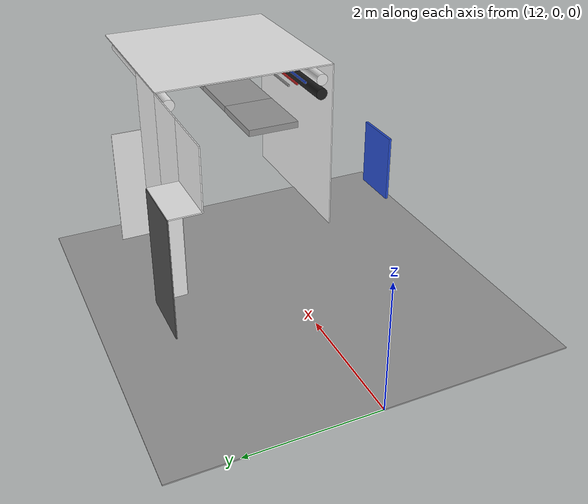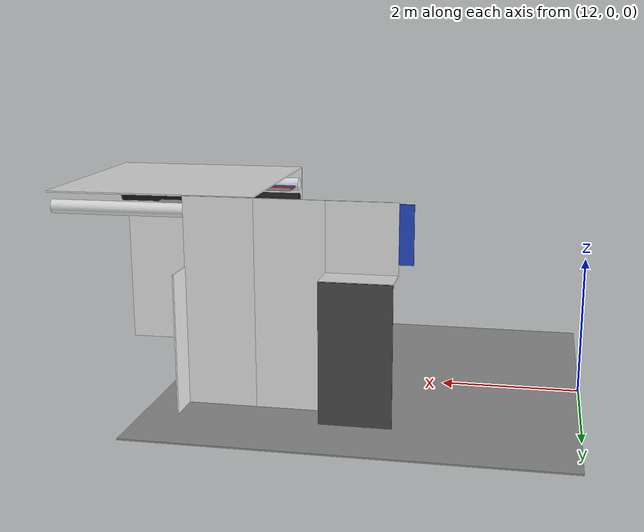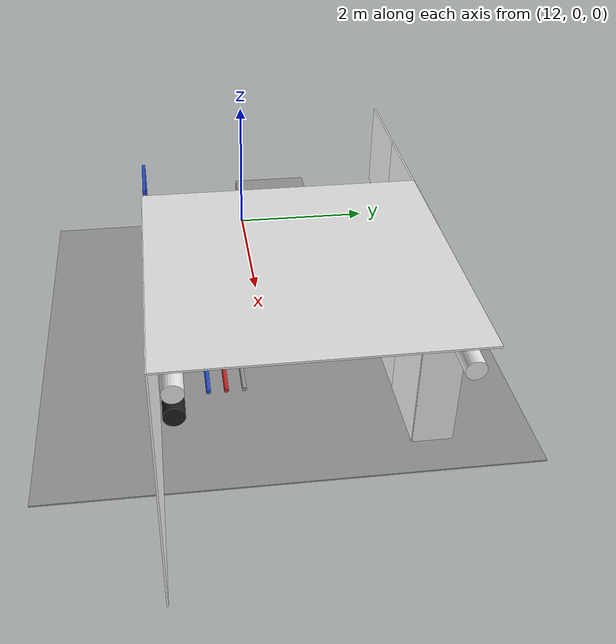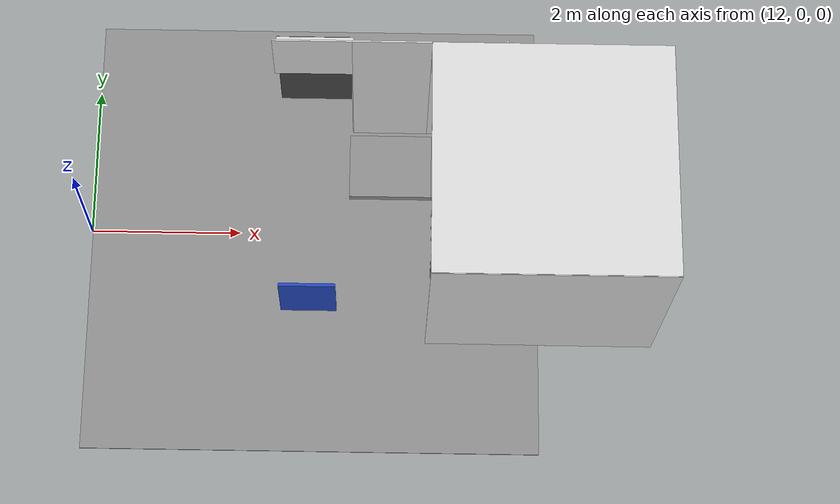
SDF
<sdf version="1.6">
 <world name="default">
  <model name="ceiling_1_5_0_2_1">
   <pose>16.0 0.0 2.55 0.0 0.0 -1.57</pose>
   <link name="link_1">
    <visual name="visual">
     <geometry><box><size>0.8 1 0.1</size></box></geometry>
     <material>
      <script><uri>file://media/materials/scripts/gazebo.material</uri><name>Gazebo/Grey</name></script>
     </material>
    </visual>
    <collision name="collision"><geometry><box><size>0.8 1 0.1</size></box></geometry></collision>
   </link>
   <static>1</static>
  </model>
  <model name="panel_5_0_0_1">
   <static>1</static>
   <pose>15.0 -1.5 1.95 0.0 0.0 -1.57</pose>
   <link name="link">
    <collision name="collision"><geometry><box><size>0.04 0.7 1</size></box></geometry></collision>
    <visual name="visual">
     <material>
      <script><name>Gazebo/Blue</name><uri>file://media/materials/scripts/gazebo.material</uri></script>
     </material>
     <geometry><box><size>0.04 0.7 1</size></box></geometry>
    </visual>
   </link>
  </model>
  <model name="wall_left_front_left_5_0_0_1">
   <static>1</static>
   <pose>16.0 1.5 1.5 0.0 0.0 0.0</pose>
   <link name="link">
    <collision name="collision"><geometry><box><size>1.0 0.02 3.0</size></box></geometry></collision>
    <visual name="visual">
     <material>
      <script><name>Gazebo/White</name><uri>file://media/materials/scripts/gazebo.material</uri></script>
     </material>
     <geometry><box><size>1.0 0.02 3.0</size></box></geometry>
    </visual>
   </link>
  </model>
  <model name="wall_left_front_up_5_0_0_1">
   <static>1</static>
   <pose>15.0 1.5 2.5 0.0 0.0 0.0</pose>
   <link name="link">
    <collision name="collision"><geometry><box><size>1.0 0.02 1.0</size></box></geometry></collision>
    <visual name="visual">
     <material>
      <script><name>Gazebo/White</name><uri>file://media/materials/scripts/gazebo.material</uri></script>
     </material>
     <geometry><box><size>1.0 0.02 1.0</size></box></geometry>
    </visual>
   </link>
  </model>
  <model name="wall_left_inside_back_5_0_0_1">
   <static>1</static>
   <pose>15.0 2.0 1.0 0.0 0.0 0.0</pose>
   <link name="link">
    <collision name="collision"><geometry><box><size>1 0.02 2</size></box></geometry></collision>
    <visual name="visual">
     <material>
      <script><name>Gazebo/DarkGrey</name><uri>file://media/materials/scripts/gazebo.material</uri></script>
     </material>
     <geometry><box><size>1 0.02 2</size></box></geometry>
    </visual>
   </link>
  </model>
  <model name="wall_left_inside_left_5_0_0_1">
   <static>1</static>
   <pose>15.5 1.75 1.0 0.0 0.0 -1.57</pose>
   <link name="link">
    <collision name="collision"><geometry><box><size>0.5 0.02 2</size></box></geometry></collision>
    <visual name="visual">
     <material>
      <script><name>Gazebo/White</name><uri>file://media/materials/scripts/gazebo.material</uri></script>
     </material>
     <geometry><box><size>0.5 0.02 2</size></box></geometry>
    </visual>
   </link>
  </model>
  <model name="wall_left_inside_top_5_0_0_1">
   <static>1</static>
   <pose>15.0 1.75 2.0 1.57 0.0 0.0</pose>
   <link name="link">
    <collision name="collision"><geometry><box><size>1 0.02 0.5</size></box></geometry></collision>
    <visual name="visual">
     <material>
      <script><name>Gazebo/White</name><uri>file://media/materials/scripts/gazebo.material</uri></script>
     </material>
     <geometry><box><size>1 0.02 0.5</size></box></geometry>
    </visual>
   </link>
  </model>
  <model name="wall_bottom_5_0_0_1">
   <static>1</static>
   <pose>15.0 0.0 0.0 0.0 0.0 -1.57</pose>
   <link name="link">
    <collision name="collision"><geometry><box><size>6.0 6.0 0.02</size></box></geometry></collision>
    <visual name="visual">
     <material>
      <script><name>Gazebo/Grey</name><uri>file://media/materials/scripts/gazebo.material</uri></script>
     </material>
     <geometry><box><size>6.0 6.0 0.02</size></box></geometry>
    </visual>
   </link>
  </model>
  <model name="wall_right_6_0_0_1">
   <static>1</static>
   <pose>18.0 -1.5 1.5 0.0 0.0 0.0</pose>
   <link name="link">
    <collision name="collision"><geometry><box><size>3.0 0.02 3.0</size></box></geometry></collision>
    <visual name="visual">
     <material>
      <script><name>Gazebo/White</name><uri>file://media/materials/scripts/gazebo.material</uri></script>
     </material>
     <geometry><box><size>3.0 0.02 3.0</size></box></geometry>
    </visual>
   </link>
  </model>
  <model name="wall_top_6_0_0_1">
   <static>1</static>
   <pose>18.0 0.0 3.0 1.57 0.0 -1.57</pose>
   <link name="link">
    <collision name="collision"><geometry><box><size>3.0 0.02 3.0</size></box></geometry></collision>
    <visual name="visual">
     <material>
      <script><name>Gazebo/White</name><uri>file://media/materials/scripts/gazebo.material</uri></script>
     </material>
     <geometry><box><size>3.0 0.02 3.0</size></box></geometry>
    </visual>
   </link>
  </model>
  <model name="ceiling_1_6_0_0_1">
   <pose>18.0 0.0 2.55 0.0 0.0 -1.57</pose>
   <link name="link_1">
    <visual name="visual">
     <geometry><box><size>0.8 1 0.1</size></box></geometry>
     <material>
      <script><uri>file://media/materials/scripts/gazebo.material</uri><name>Gazebo/Grey</name></script>
     </material>
    </visual>
    <collision name="collision"><geometry><box><size>0.8 1 0.1</size></box></geometry></collision>
   </link>
   <static>1</static>
  </model>
  <model name="ceiling_1_6_0_1_1">
   <pose>17.0 0.0 2.55 0.0 0.0 -1.57</pose>
   <link name="link_1">
    <visual name="visual">
     <geometry><box><size>0.8 1 0.1</size></box></geometry>
     <material>
      <script><uri>file://media/materials/scripts/gazebo.material</uri><name>Gazebo/Grey</name></script>
     </material>
    </visual>
    <collision name="collision"><geometry><box><size>0.8 1 0.1</size></box></geometry></collision>
   </link>
   <static>1</static>
  </model>
  <model name="white_pipe_left_6_0_0_1">
   <static>1</static>
   <pose>18.0 0.0 2.76 0.0 0.0 -1.57</pose>
   <link name="link_0">
    <visual name="visual">
     <pose>-1.3 0 0 1.57 0 0</pose>
     <geometry><cylinder><radius>0.1</radius><length>3.0</length></cylinder></geometry>
     <material>
      <script><uri>file://media/materials/scripts/gazebo.material</uri><name>Gazebo/White</name></script>
     </material>
    </visual>
    <collision name="collision">
     <pose>-1.3 0 0 1.57 0 0</pose>
     <geometry><cylinder><radius>0.1</radius><length>3.0</length></cylinder></geometry>
    </collision>
   </link>
  </model>
  <model name="white_pipe_right_6_0_0_1">
   <static>1</static>
   <pose>18.0 0.0 2.76 0.0 0.0 -1.57</pose>
   <link name="link_0">
    <visual name="visual">
     <pose>1.3 0 0 1.57 0 0</pose>
     <geometry><cylinder><radius>0.1</radius><length>3.0</length></cylinder></geometry>
     <material>
      <script><uri>file://media/materials/scripts/gazebo.material</uri><name>Gazebo/White</name></script>
     </material>
    </visual>
    <collision name="collision">
     <pose>1.3 0 0 1.57 0 0</pose>
     <geometry><cylinder><radius>0.1</radius><length>3.0</length></cylinder></geometry>
    </collision>
   </link>
  </model>
  <model name="black_pipe_right_6_0_0_1">
   <static>1</static>
   <pose>18.0 0.0 2.76 0.0 0.0 -1.57</pose>
   <link name="link_0">
    <visual name="visual">
     <pose>1.3 0 -0.25 1.57 0 0</pose>
     <geometry><cylinder><radius>0.1</radius><length>3.0</length></cylinder></geometry>
     <material>
      <script><uri>file://media/materials/scripts/gazebo.material</uri><name>Gazebo/Black</name></script>
     </material>
    </visual>
    <collision name="collision">
     <pose>1.3 0 -0.25 1.57 0 0</pose>
     <geometry><cylinder><radius>0.1</radius><length>3.0</length></cylinder></geometry>
    </collision>
   </link>
  </model>
  <model name="grey_pipe_right_6_0_0_1">
   <static>1</static>
   <pose>18.0 0.0 2.76 0.0 0.0 -1.57</pose>
   <link name="link_0">
    <visual name="visual">
     <pose>0.7 0 0 1.57 0 0</pose>
     <geometry><cylinder><radius>0.02</radius><length>3.0</length></cylinder></geometry>
     <material>
      <script><uri>file://media/materials/scripts/gazebo.material</uri><name>Gazebo/Grey</name></script>
     </material>
    </visual>
    <collision name="collision">
     <pose>0.7 0 0 1.57 0 0</pose>
     <geometry><cylinder><radius>0.02</radius><length>3.0</length></cylinder></geometry>
    </collision>
   </link>
  </model>
  <model name="red_pipe_right_6_0_0_1">
   <static>1</static>
   <pose>18.0 0.0 2.76 0.0 0.0 -1.57</pose>
   <link name="link_0">
    <visual name="visual">
     <pose>0.85 0 0 1.57 0 0</pose>
     <geometry><cylinder><radius>0.02</radius><length>3.0</length></cylinder></geometry>
     <material>
      <script><uri>file://media/materials/scripts/gazebo.material</uri><name>Gazebo/Red</name></script>
     </material>
    </visual>
    <collision name="collision">
     <pose>0.85 0 0 1.57 0 0</pose>
     <geometry><cylinder><radius>0.02</radius><length>3.0</length></cylinder></geometry>
    </collision>
   </link>
  </model>
  <model name="blue_pipe_right_6_0_0_1">
   <static>1</static>
   <pose>18.0 0.0 2.76 0.0 0.0 -1.57</pose>
   <link name="link_0">
    <visual name="visual">
     <pose>1 0 0 1.57 0 0</pose>
     <geometry><cylinder><radius>0.02</radius><length>3.0</length></cylinder></geometry>
     <material>
      <script><uri>file://media/materials/scripts/gazebo.material</uri><name>Gazebo/Blue</name></script>
     </material>
    </visual>
    <collision name="collision">
     <pose>1 0 0 1.57 0 0</pose>
     <geometry><cylinder><radius>0.02</radius><length>3.0</length></cylinder></geometry>
    </collision>
   </link>
  </model>
  <model name="wall_left_front_right_6_0_0_1">
   <static>1</static>
   <pose>17.0 1.5 1.5 0.0 0.0 0.0</pose>
   <link name="link">
    <collision name="collision"><geometry><box><size>1.0 0.02 3.0</size></box></geometry></collision>
    <visual name="visual">
     <material>
      <script><name>Gazebo/White</name><uri>file://media/materials/scripts/gazebo.material</uri></script>
     </material>
     <geometry><box><size>1.0 0.02 3.0</size></box></geometry>
    </visual>
   </link>
  </model>
  <model name="wall_left_inside_right_6_0_0_1">
   <static>1</static>
   <pose>17.5 1.75 1.0 0.0 0.0 -1.57</pose>
   <link name="link">
    <collision name="collision"><geometry><box><size>0.5 0.02 2</size></box></geometry></collision>
    <visual name="visual">
     <material>
      <script><name>Gazebo/White</name><uri>file://media/materials/scripts/gazebo.material</uri></script>
     </material>
     <geometry><box><size>0.5 0.02 2</size></box></geometry>
    </visual>
   </link>
  </model>
 </world>
</sdf>
